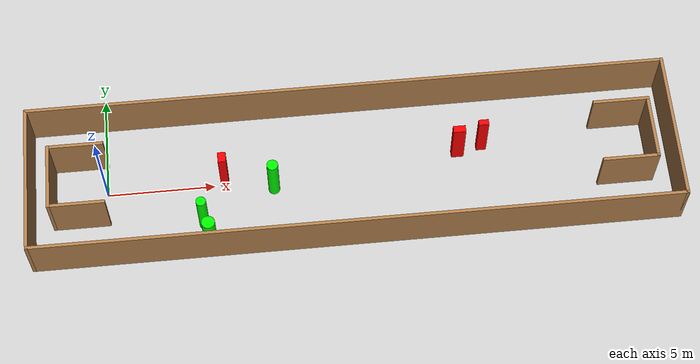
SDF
<sdf version="1.7">
 <world name="default">
  <light name="sun" type="directional">
   <pose>0 0 10 0 -0 0</pose>
   <diffuse>0.8 0.8 0.8 1</diffuse>
   <specular>0.2 0.2 0.2 1</specular>
   <attenuation>
    <range>1000</range>
    <constant>0.9</constant>
    <linear>0.01</linear>
    <quadratic>0.001</quadratic>
   </attenuation>
   <direction>-0.5 0.1 -0.9</direction>
   <spot><inner_angle>0</inner_angle><outer_angle>0</outer_angle><falloff>0</falloff></spot>
  </light>
  <model name="ground_plane">
   <static>1</static>
   <link name="link">
    <collision name="collision">
     <geometry><plane><normal>0 0 1</normal><size>100 100</size></plane></geometry>
     <surface>
      <contact><collide_bitmask>65535</collide_bitmask></contact>
      <friction><ode><mu>100</mu><mu2>50</mu2></ode></friction>
     </surface>
    </collision>
    <visual name="visual">
     <cast_shadows>0</cast_shadows>
     <geometry><plane><normal>0 0 1</normal><size>100 100</size></plane></geometry>
     <material>
      <script><uri>file://media/materials/scripts/gazebo.material</uri><name>Gazebo/Grey</name></script>
     </material>
    </visual>
   </link>
  </model>
  <gravity>0 0 -9.8</gravity>
  <magnetic_field>6e-06 2.3e-05 -4.2e-05</magnetic_field>
  <atmosphere type="adiabatic"/>
  <physics type="ode">
   <max_step_size>0.001</max_step_size>
   <real_time_factor>1</real_time_factor>
   <real_time_update_rate>1000</real_time_update_rate>
  </physics>
  <scene><ambient>0.4 0.4 0.4 1</ambient><background>0.7 0.7 0.7 1</background><shadows>1</shadows></scene>
  <spherical_coordinates>
   <surface_model>EARTH_WGS84</surface_model>
   <latitude_deg>0</latitude_deg>
   <longitude_deg>0</longitude_deg>
   <elevation>0</elevation>
   <heading_deg>0</heading_deg>
  </spherical_coordinates>
  <model name="my_base_walls">
   <link name="Wall_0">
    <collision name="Wall_0_Collision">
     <geometry><box><size>7.15 0.15 2.5</size></box></geometry>
     <pose>0 0 1.25 0 -0 0</pose>
    </collision>
    <visual name="Wall_0_Visual">
     <pose>0 0 1.25 0 -0 0</pose>
     <geometry><box><size>7.15 0.15 2.5</size></box></geometry>
     <material>
      <script><uri>file://media/materials/scripts/gazebo.material</uri><name>Gazebo/Wood</name></script>
      <ambient>1 1 1 1</ambient>
     </material>
     <meta><layer>0</layer></meta>
    </visual>
    <pose>-15 0 0 0 -0 1.5708</pose>
   </link>
   <link name="Wall_10">
    <collision name="Wall_10_Collision">
     <geometry><box><size>2.65 0.15 2.5</size></box></geometry>
     <pose>0 0 1.25 0 -0 0</pose>
    </collision>
    <visual name="Wall_10_Visual">
     <pose>0 0 1.25 0 -0 0</pose>
     <geometry><box><size>2.65 0.15 2.5</size></box></geometry>
     <material>
      <script><uri>file://media/materials/scripts/gazebo.material</uri><name>Gazebo/Wood</name></script>
      <ambient>1 1 1 1</ambient>
     </material>
     <meta><layer>0</layer></meta>
    </visual>
    <pose>-12.75 -1.5 0 0 -0 0</pose>
   </link>
   <link name="Wall_12">
    <collision name="Wall_12_Collision">
     <geometry><box><size>2.65 0.15 2.5</size></box></geometry>
     <pose>0 0 1.25 0 -0 0</pose>
    </collision>
    <visual name="Wall_12_Visual">
     <pose>0 0 1.25 0 -0 0</pose>
     <geometry><box><size>2.65 0.15 2.5</size></box></geometry>
     <material>
      <script><uri>file://media/materials/scripts/gazebo.material</uri><name>Gazebo/Wood</name></script>
      <ambient>1 1 1 1</ambient>
     </material>
     <meta><layer>0</layer></meta>
    </visual>
    <pose>-12.75 1.5 0 0 -0 0</pose>
   </link>
   <link name="Wall_14">
    <collision name="Wall_14_Collision">
     <geometry><box><size>3.15 0.15 2.5</size></box></geometry>
     <pose>0 0 1.25 0 -0 0</pose>
    </collision>
    <visual name="Wall_14_Visual">
     <pose>0 0 1.25 0 -0 0</pose>
     <geometry><box><size>3.15 0.15 2.5</size></box></geometry>
     <material>
      <script><uri>file://media/materials/scripts/gazebo.material</uri><name>Gazebo/Wood</name></script>
      <ambient>1 1 1 1</ambient>
     </material>
     <meta><layer>0</layer></meta>
    </visual>
    <pose>14 0 0 0 -0 -1.5708</pose>
   </link>
   <link name="Wall_15">
    <collision name="Wall_15_Collision">
     <geometry><box><size>2.65 0.15 2.5</size></box></geometry>
     <pose>0 0 1.25 0 -0 0</pose>
    </collision>
    <visual name="Wall_15_Visual">
     <pose>0 0 1.25 0 -0 0</pose>
     <geometry><box><size>2.65 0.15 2.5</size></box></geometry>
     <material>
      <script><uri>file://media/materials/scripts/gazebo.material</uri><name>Gazebo/Wood</name></script>
      <ambient>1 1 1 1</ambient>
     </material>
     <meta><layer>0</layer></meta>
    </visual>
    <pose>12.75 -1.5 0 0 -0 3.14159</pose>
   </link>
   <link name="Wall_17">
    <collision name="Wall_17_Collision">
     <geometry><box><size>2.65 0.15 2.5</size></box></geometry>
     <pose>0 0 1.25 0 -0 0</pose>
    </collision>
    <visual name="Wall_17_Visual">
     <pose>0 0 1.25 0 -0 0</pose>
     <geometry><box><size>2.65 0.15 2.5</size></box></geometry>
     <material>
      <script><uri>file://media/materials/scripts/gazebo.material</uri><name>Gazebo/Wood</name></script>
      <ambient>1 1 1 1</ambient>
     </material>
     <meta><layer>0</layer></meta>
    </visual>
    <pose>12.75 1.5 0 0 -0 3.14159</pose>
   </link>
   <link name="Wall_2">
    <collision name="Wall_2_Collision">
     <geometry><box><size>30.15 0.15 2.5</size></box></geometry>
     <pose>0 0 1.25 0 -0 0</pose>
    </collision>
    <visual name="Wall_2_Visual">
     <pose>0 0 1.25 0 -0 0</pose>
     <geometry><box><size>30.15 0.15 2.5</size></box></geometry>
     <material>
      <script><uri>file://media/materials/scripts/gazebo.material</uri><name>Gazebo/Wood</name></script>
      <ambient>1 1 1 1</ambient>
     </material>
     <meta><layer>0</layer></meta>
    </visual>
    <pose>-0 -3.5 0 0 -0 0</pose>
   </link>
   <link name="Wall_4">
    <collision name="Wall_4_Collision">
     <geometry><box><size>30.15 0.15 2.5</size></box></geometry>
     <pose>0 0 1.25 0 -0 0</pose>
    </collision>
    <visual name="Wall_4_Visual">
     <pose>0 0 1.25 0 -0 0</pose>
     <geometry><box><size>30.15 0.15 2.5</size></box></geometry>
     <material>
      <script><uri>file://media/materials/scripts/gazebo.material</uri><name>Gazebo/Wood</name></script>
      <ambient>1 1 1 1</ambient>
     </material>
     <meta><layer>0</layer></meta>
    </visual>
    <pose>-0 3.5 0 0 -0 0</pose>
   </link>
   <link name="Wall_6">
    <collision name="Wall_6_Collision">
     <geometry><box><size>7.15 0.15 2.5</size></box></geometry>
     <pose>0 0 1.25 0 -0 0</pose>
    </collision>
    <visual name="Wall_6_Visual">
     <pose>0 0 1.25 0 -0 0</pose>
     <geometry><box><size>7.15 0.15 2.5</size></box></geometry>
     <material>
      <script><uri>file://media/materials/scripts/gazebo.material</uri><name>Gazebo/Wood</name></script>
      <ambient>1 1 1 1</ambient>
     </material>
     <meta><layer>0</layer></meta>
    </visual>
    <pose>15 0 0 0 -0 -1.5708</pose>
   </link>
   <link name="Wall_9">
    <collision name="Wall_9_Collision">
     <geometry><box><size>3.15 0.15 2.5</size></box></geometry>
     <pose>0 0 1.25 0 -0 0</pose>
    </collision>
    <visual name="Wall_9_Visual">
     <pose>0 0 1.25 0 -0 0</pose>
     <geometry><box><size>3.15 0.15 2.5</size></box></geometry>
     <material>
      <script><uri>file://media/materials/scripts/gazebo.material</uri><name>Gazebo/Wood</name></script>
      <ambient>1 1 1 1</ambient>
     </material>
     <meta><layer>0</layer></meta>
    </visual>
    <pose>-14 0 0 0 -0 -1.5708</pose>
   </link>
   <static>1</static>
   <pose>11.5 0 0 0 -0 0</pose>
  </model>
  <model name="cylinder1">
   <static>1</static>
   <link name="link">
    <inertial>
     <mass>1</mass>
     <inertia><ixx>0.5</ixx><ixy>0</ixy><ixz>0</ixz><iyy>0.5</iyy><iyz>0</iyz><izz>1</izz></inertia>
    </inertial>
    <collision name="collision">
     <geometry><cylinder><radius>0.23466201793241398</radius><length>2.5</length></cylinder></geometry>
    </collision>
    <visual name="visual">
     <geometry><cylinder><radius>0.23466201793241398</radius><length>2.5</length></cylinder></geometry>
     <material>
      <ambient>0 1 0 1</ambient>
      <diffuse>0 1 0 1</diffuse>
      <specular>0.1 0.1 0.1 1</specular>
      <emissive>0 0 0 0</emissive>
     </material>
    </visual>
   </link>
   <pose>4.4099150092465695 -1.9202550166959502 1.25 0 0 0</pose>
  </model>
  <model name="cylinder2">
   <static>1</static>
   <link name="link">
    <inertial>
     <mass>1</mass>
     <inertia><ixx>0.5</ixx><ixy>0</ixy><ixz>0</ixz><iyy>0.5</iyy><iyz>0</iyz><izz>1</izz></inertia>
    </inertial>
    <collision name="collision">
     <geometry><cylinder><radius>0.30975480232279456</radius><length>2.5</length></cylinder></geometry>
    </collision>
    <visual name="visual">
     <geometry><cylinder><radius>0.30975480232279456</radius><length>2.5</length></cylinder></geometry>
     <material>
      <ambient>0 1 0 1</ambient>
      <diffuse>0 1 0 1</diffuse>
      <specular>0.1 0.1 0.1 1</specular>
      <emissive>0 0 0 0</emissive>
     </material>
    </visual>
   </link>
   <pose>4.678817724418446 -2.9935629947069 1.25 0 0 0</pose>
  </model>
  <model name="cylinder3">
   <static>1</static>
   <link name="link">
    <inertial>
     <mass>1</mass>
     <inertia><ixx>0.5</ixx><ixy>0</ixy><ixz>0</ixz><iyy>0.5</iyy><iyz>0</iyz><izz>1</izz></inertia>
    </inertial>
    <collision name="collision">
     <geometry><cylinder><radius>0.26363993599187563</radius><length>2.5</length></cylinder></geometry>
    </collision>
    <visual name="visual">
     <geometry><cylinder><radius>0.26363993599187563</radius><length>2.5</length></cylinder></geometry>
     <material>
      <ambient>0 1 0 1</ambient>
      <diffuse>0 1 0 1</diffuse>
      <specular>0.1 0.1 0.1 1</specular>
      <emissive>0 0 0 0</emissive>
     </material>
    </visual>
   </link>
   <pose>7.76876931024923 -0.3807505539286913 1.25 0 0 0</pose>
  </model>
  <model name="box1">
   <static>1</static>
   <link name="link">
    <inertial>
     <mass>1</mass>
     <inertia><ixx>0.083</ixx><ixy>0</ixy><ixz>0</ixz><iyy>0.083</iyy><iyz>0</iyz><izz>0.083</izz></inertia>
    </inertial>
    <collision name="collision">
     <geometry><box><size>0.46910278397416666 0.27105180833161624 2.5</size></box></geometry>
    </collision>
    <visual name="visual">
     <geometry><box><size>0.46910278397416666 0.27105180833161624 2.5</size></box></geometry>
     <material>
      <ambient>1 0 0 1</ambient>
      <diffuse>1 0 0 1</diffuse>
      <specular>0.1 0.1 0.1 1</specular>
      <emissive>0 0 0 0</emissive>
     </material>
    </visual>
    <sensor name="my_contact" type="contact">
     <contact><collision>box_collision</collision><topic>__default_topic__</topic></contact>
    </sensor>
   </link>
   <pose>17.708607812166353 0.9181746556215451 1.25 0 0 0</pose>
  </model>
  <model name="box2">
   <static>1</static>
   <link name="link">
    <inertial>
     <mass>1</mass>
     <inertia><ixx>0.083</ixx><ixy>0</ixy><ixz>0</ixz><iyy>0.083</iyy><iyz>0</iyz><izz>0.083</izz></inertia>
    </inertial>
    <collision name="collision">
     <geometry><box><size>0.5779775778825875 0.3278362977926339 2.5</size></box></geometry>
    </collision>
    <visual name="visual">
     <geometry><box><size>0.5779775778825875 0.3278362977926339 2.5</size></box></geometry>
     <material>
      <ambient>1 0 0 1</ambient>
      <diffuse>1 0 0 1</diffuse>
      <specular>0.1 0.1 0.1 1</specular>
      <emissive>0 0 0 0</emissive>
     </material>
    </visual>
    <sensor name="my_contact" type="contact">
     <contact><collision>box_collision</collision><topic>__default_topic__</topic></contact>
    </sensor>
   </link>
   <pose>16.54691277805142 0.6746870315182347 1.25 0 0 0</pose>
  </model>
  <model name="box3">
   <static>1</static>
   <link name="link">
    <inertial>
     <mass>1</mass>
     <inertia><ixx>0.083</ixx><ixy>0</ixy><ixz>0</ixz><iyy>0.083</iyy><iyz>0</iyz><izz>0.083</izz></inertia>
    </inertial>
    <collision name="collision">
     <geometry><box><size>0.37495503307428407 0.49149947472112954 2.5</size></box></geometry>
    </collision>
    <visual name="visual">
     <geometry><box><size>0.37495503307428407 0.49149947472112954 2.5</size></box></geometry>
     <material>
      <ambient>1 0 0 1</ambient>
      <diffuse>1 0 0 1</diffuse>
      <specular>0.1 0.1 0.1 1</specular>
      <emissive>0 0 0 0</emissive>
     </material>
    </visual>
    <sensor name="my_contact" type="contact">
     <contact><collision>box_collision</collision><topic>__default_topic__</topic></contact>
    </sensor>
   </link>
   <pose>5.478172649816184 0.24338261386882332 1.25 0 0 0</pose>
  </model>
 </world>
</sdf>
